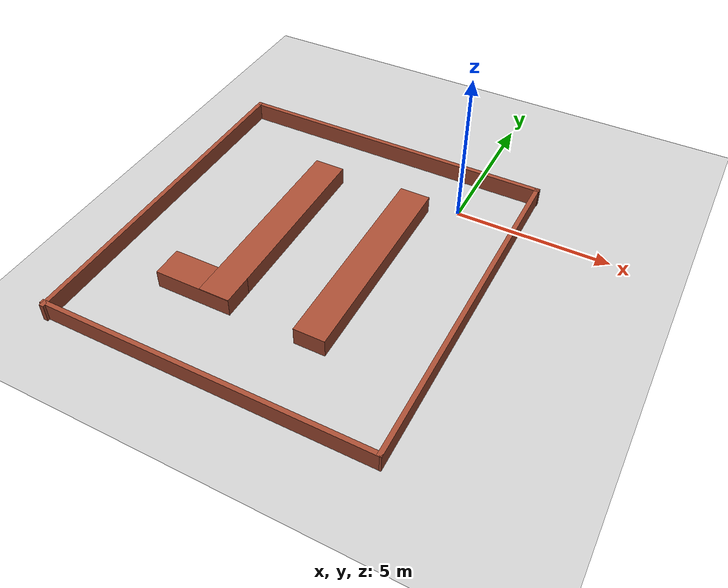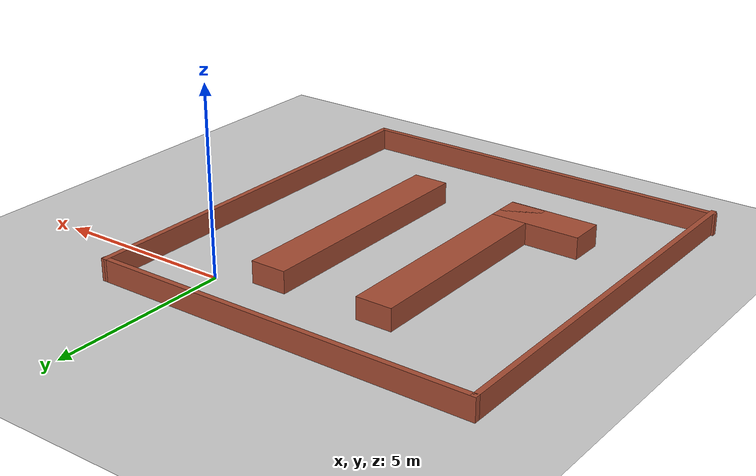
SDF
<sdf version="1.6">
 <world name="default">
  <light name="sun" type="directional">
   <pose>0 0 10 0 -0 0</pose>
   <diffuse>0.8 0.8 0.8 1</diffuse>
   <specular>0.2 0.2 0.2 1</specular>
   <attenuation>
    <range>1000</range>
    <constant>0.9</constant>
    <linear>0.01</linear>
    <quadratic>0.001</quadratic>
   </attenuation>
   <direction>-0.5 0.1 -0.9</direction>
  </light>
  <model name="ground_plane">
   <static>1</static>
   <link name="link">
    <collision name="collision">
     <geometry><plane><normal>0 0 1</normal><size>100 100</size></plane></geometry>
     <surface>
      <contact><collide_bitmask>65535</collide_bitmask></contact>
      <friction><ode><mu>100</mu><mu2>50</mu2></ode></friction>
     </surface>
    </collision>
    <visual name="visual">
     <cast_shadows>0</cast_shadows>
     <geometry><plane><normal>0 0 1</normal><size>100 100</size></plane></geometry>
     <material>
      <script><uri>file://media/materials/scripts/gazebo.material</uri><name>Gazebo/Grey</name></script>
     </material>
    </visual>
   </link>
  </model>
  <gravity>0 0 -9.8</gravity>
  <magnetic_field>6e-06 2.3e-05 -4.2e-05</magnetic_field>
  <atmosphere type="adiabatic"/>
  <physics name="default_physics" default="0" type="ode">
   <max_step_size>0.001</max_step_size>
   <real_time_factor>1</real_time_factor>
   <real_time_update_rate>1000</real_time_update_rate>
  </physics>
  <scene><ambient>0.4 0.4 0.4 1</ambient><background>0.7 0.7 0.7 1</background><shadows>1</shadows></scene>
  <audio><device>default</device></audio>
  <spherical_coordinates>
   <surface_model>EARTH_WGS84</surface_model>
   <latitude_deg>0</latitude_deg>
   <longitude_deg>0</longitude_deg>
   <elevation>0</elevation>
   <heading_deg>0</heading_deg>
  </spherical_coordinates>
  <model name="seconhome">
   <pose>-3.28831 -4.05011 0 0 -0 0</pose>
   <link name="Wall_0">
    <collision name="Wall_0_Collision">
     <geometry><box><size>10.7538 0.15 0.6</size></box></geometry>
     <pose>0 0 0.3 0 -0 0</pose>
    </collision>
    <visual name="Wall_0_Visual">
     <pose>0 0 0.3 0 -0 0</pose>
     <geometry><box><size>10.7538 0.15 0.6</size></box></geometry>
     <material>
      <script><uri>file://media/materials/scripts/gazebo.material</uri><name>Gazebo/Bricks</name></script>
      <ambient>1 1 1 1</ambient>
     </material>
     <meta><layer>0</layer></meta>
    </visual>
    <pose>0.028529 5.6749 0 0 -0 3.14159</pose>
   </link>
   <link name="Wall_11">
    <collision name="Wall_11_Collision">
     <geometry><box><size>6.85 1 0.6</size></box></geometry>
     <pose>0 0 0.3 0 -0 0</pose>
    </collision>
    <visual name="Wall_11_Visual">
     <pose>0 0 0.3 0 -0 0</pose>
     <geometry><box><size>6.85 1 0.6</size></box></geometry>
     <material>
      <script><uri>file://media/materials/scripts/gazebo.material</uri><name>Gazebo/Bricks</name></script>
      <ambient>1 1 1 1</ambient>
     </material>
     <meta><layer>0</layer></meta>
    </visual>
    <pose>1.89489 0.257895 0 0 -0 -1.5708</pose>
   </link>
   <link name="Wall_14">
    <collision name="Wall_14_Collision">
     <geometry><box><size>6.80437 1 0.6</size></box></geometry>
     <pose>0 0 0.3 0 -0 0</pose>
    </collision>
    <visual name="Wall_14_Visual">
     <pose>0 0 0.3 0 -0 0</pose>
     <geometry><box><size>6.80437 1 0.6</size></box></geometry>
     <material>
      <script><uri>file://media/materials/scripts/gazebo.material</uri><name>Gazebo/Bricks</name></script>
      <ambient>1 1 1 1</ambient>
     </material>
     <meta><layer>0</layer></meta>
    </visual>
    <pose>-1.25305 0.2815 0 0 -0 -1.5708</pose>
   </link>
   <link name="Wall_16">
    <collision name="Wall_16_Collision">
     <geometry><box><size>2.5 1 0.6</size></box></geometry>
     <pose>0 0 0.3 0 -0 0</pose>
    </collision>
    <visual name="Wall_16_Visual">
     <pose>0 0 0.3 0 -0 0</pose>
     <geometry><box><size>2.5 1 0.6</size></box></geometry>
     <material>
      <script><uri>file://media/materials/scripts/gazebo.material</uri><name>Gazebo/Bricks</name></script>
      <ambient>1 1 1 1</ambient>
     </material>
     <meta><layer>0</layer></meta>
    </visual>
    <pose>-2.00305 -2.6359 0 0 -0 3.14159</pose>
   </link>
   <link name="Wall_3">
    <collision name="Wall_3_Collision">
     <geometry><box><size>11.5 0.15 0.6</size></box></geometry>
     <pose>0 0 0.3 0 -0 0</pose>
    </collision>
    <visual name="Wall_3_Visual">
     <pose>0 0 0.3 0 -0 0</pose>
     <geometry><box><size>11.5 0.15 0.6</size></box></geometry>
     <material>
      <script><uri>file://media/materials/scripts/gazebo.material</uri><name>Gazebo/Bricks</name></script>
      <ambient>1 1 1 1</ambient>
     </material>
     <meta><layer>0</layer></meta>
    </visual>
    <pose>-5.27336 -0.000101 0 0 -0 -1.5708</pose>
   </link>
   <link name="Wall_5">
    <collision name="Wall_5_Collision">
     <geometry><box><size>11.4202 0.15 0.6</size></box></geometry>
     <pose>0 0 0.3 0 -0 0</pose>
    </collision>
    <visual name="Wall_5_Visual">
     <pose>0 0 0.3 0 -0 0</pose>
     <geometry><box><size>11.4202 0.15 0.6</size></box></geometry>
     <material>
      <script><uri>file://media/materials/scripts/gazebo.material</uri><name>Gazebo/Bricks</name></script>
      <ambient>1 1 1 1</ambient>
     </material>
     <meta><layer>0</layer></meta>
    </visual>
    <pose>5.3 0.03981 0 0 -0 -1.5735</pose>
   </link>
   <link name="Wall_7">
    <collision name="Wall_7_Collision">
     <geometry><box><size>10.75 0.15 0.6</size></box></geometry>
     <pose>0 0 0.3 0 -0 0</pose>
    </collision>
    <visual name="Wall_7_Visual">
     <pose>0 0 0.3 0 -0 0</pose>
     <geometry><box><size>10.75 0.15 0.6</size></box></geometry>
     <material>
      <script><uri>file://media/materials/scripts/gazebo.material</uri><name>Gazebo/Bricks</name></script>
      <ambient>1 1 1 1</ambient>
     </material>
     <meta><layer>0</layer></meta>
    </visual>
    <pose>-0.030417 -5.59528 0 0 -0 3.14159</pose>
   </link>
   <static>1</static>
  </model>
 </world>
</sdf>
